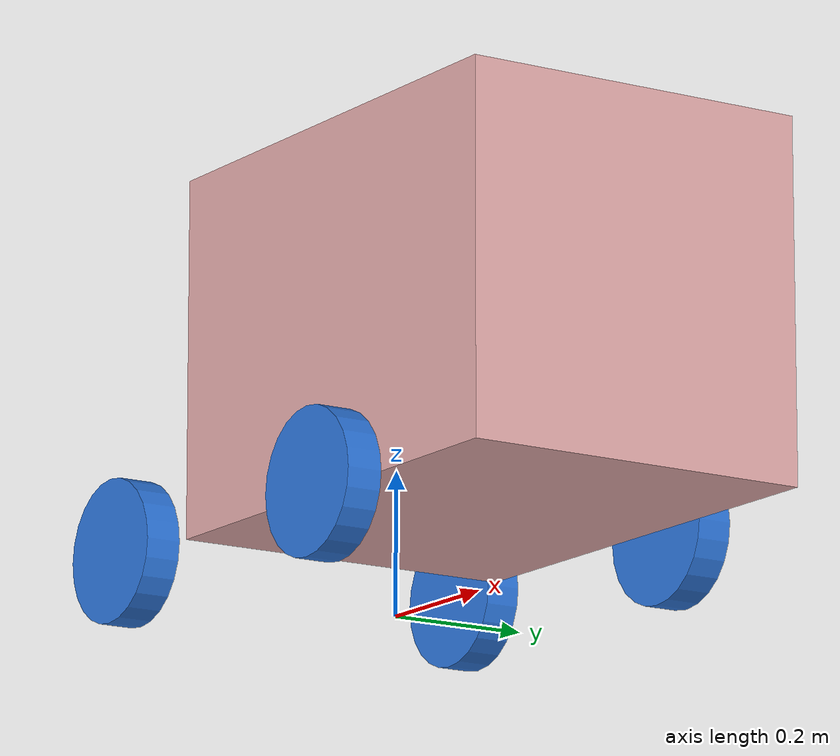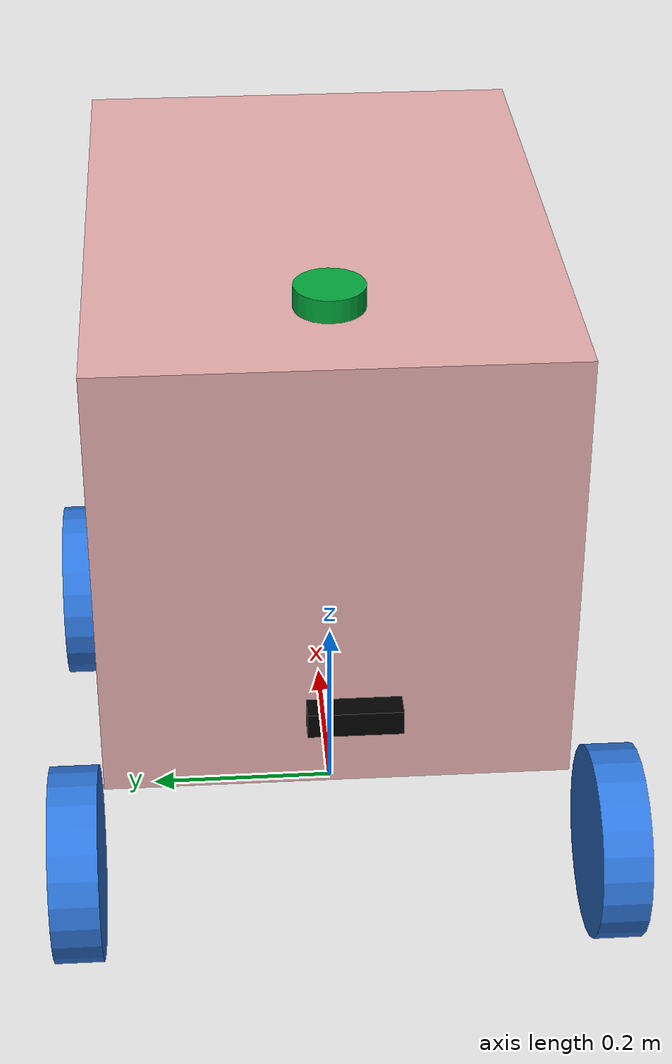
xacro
<?xml version="1.0"?>
<robot name="linorobot2_hamo_bot" xmlns:xacro="http://ros.org/wiki/xacro">

  <!-- ================= ARGS ================= -->
  <xacro:arg name="sim" default="false" />

  <!-- ================= INCLUDE PROPERTIES ================= -->
  <xacro:include filename="$(find linorobot2_description)/urdf/hamo_bot_properties.urdf.xacro" />

  <!-- ================= INCLUDE MECHANICS ================= -->
  <xacro:include filename="$(find linorobot2_description)/urdf/mech/base.urdf.xacro" />
  <xacro:include filename="$(find linorobot2_description)/urdf/mech/wheel.urdf.xacro" />
  <xacro:include filename="$(find linorobot2_description)/urdf/mech/caster_wheel.urdf.xacro" />

  <!-- ================= INCLUDE SENSORS ================= -->
  <xacro:include filename="$(find linorobot2_description)/urdf/sensors/plugins.urdf.xacro" />
  <xacro:include filename="$(find linorobot2_description)/urdf/sensors/imu.urdf.xacro" />
  <xacro:include filename="$(find linorobot2_description)/urdf/sensors/gps.urdf.xacro" />
  <xacro:include filename="$(find linorobot2_description)/urdf/sensors/generic_laser.urdf.xacro" />
  <xacro:include filename="$(find linorobot2_description)/urdf/sensors/depth_sensor.urdf.xacro" />

  <!-- ================= CONTROLLERS ================= -->
  <xacro:include filename="$(find linorobot2_description)/urdf/controllers/diff_drive.urdf.xacro" />

  <!-- ================= BASE ================= -->
  <xacro:base
    length="${base_length}"
    width="${base_width}"
    height="${base_height}"
    mass="${base_mass}"
    wheel_radius="${wheel_radius}"
    wheel_pos_z="${wheel_pos_z}"
    mesh_file="${base_mesh_file}"
  />

  <!-- ================= DRIVE WHEELS ================= -->
  <!-- LEFT -->
  <xacro:wheel
    side="left"
    radius="${wheel_radius}"
    width="${wheel_width}"
    pos_x="${wheel_pos_x}"
    pos_y="${wheel_pos_y}"
    pos_z="${wheel_pos_z}"
    mass="${wheel_mass}"
    mesh_file="${wheel_mesh_file}"
  />

  <!-- RIGHT -->
  <xacro:wheel
    side="right"
    radius="${wheel_radius}"
    width="${wheel_width}"
    pos_x="${wheel_pos_x}"
    pos_y="${-wheel_pos_y}"
    pos_z="${wheel_pos_z}"
    mass="${wheel_mass}"
    mesh_file="${wheel_mesh_file}"
  />
<!-- ================= FRONT PASSIVE WHEELS ================= -->
  <link name="front_left_wheel_link">
    <visual>
      <origin xyz="0 0 0" rpy="${pi/2} 0 0"/>
      <geometry>
        <cylinder radius="${wheel_radius}" length="${wheel_width}"/>
      </geometry>
      <material name="blue">
        <color rgba="0.1764 0.4588 0.8509 1.0"/>
      </material>
    </visual>
    <collision>
      <origin xyz="0 0 0" rpy="${pi/2} 0 0"/>
      <geometry>
        <cylinder radius="${wheel_radius}" length="${wheel_width}"/>
      </geometry>
    </collision>
    <inertial>
      <mass value="${wheel_mass}"/>
      <inertia ixx="${(2/5)*wheel_mass*(wheel_radius*wheel_radius)}" ixy="0" ixz="0"
               iyy="${(2/5)*wheel_mass*(wheel_radius*wheel_radius)}" iyz="0"
               izz="${(2/5)*wheel_mass*(wheel_radius*wheel_radius)}"/>
    </inertial>
  </link>
  <joint name="front_left_wheel_joint" type="continuous">
    <axis xyz="0 1 0"/>
    <parent link="base_link"/>
    <child link="front_left_wheel_link"/>
    <origin xyz="0.25 ${wheel_pos_y} ${wheel_pos_z}" rpy="0 0 0"/>
  </joint>

  <link name="front_right_wheel_link">
    <visual>
      <origin xyz="0 0 0" rpy="${pi/2} 0 0"/>
      <geometry>
        <cylinder radius="${wheel_radius}" length="${wheel_width}"/>
      </geometry>
      <material name="blue">
        <color rgba="0.1764 0.4588 0.8509 1.0"/>
      </material>
    </visual>
    <collision>
      <origin xyz="0 0 0" rpy="${pi/2} 0 0"/>
      <geometry>
        <cylinder radius="${wheel_radius}" length="${wheel_width}"/>
      </geometry>
    </collision>
    <inertial>
      <mass value="${wheel_mass}"/>
      <inertia ixx="${(2/5)*wheel_mass*(wheel_radius*wheel_radius)}" ixy="0" ixz="0"
               iyy="${(2/5)*wheel_mass*(wheel_radius*wheel_radius)}" iyz="0"
               izz="${(2/5)*wheel_mass*(wheel_radius*wheel_radius)}"/>
    </inertial>
  </link>
  <joint name="front_right_wheel_joint" type="continuous">
    <axis xyz="0 1 0"/>
    <parent link="base_link"/>
    <child link="front_right_wheel_link"/>
    <origin xyz="0.25 ${-wheel_pos_y} ${wheel_pos_z}" rpy="0 0 0"/>
  </joint>

  <!-- ================= OPTIONAL CASTERS (DISABLED) ================= -->
  <xacro:if value="${front_caster_wheel}">
    <xacro:caster_wheel
      side="front"
      mass="0.01"
      base_length="${base_length}"
      wheel_radius="${wheel_radius}"
      wheel_pos_z="${wheel_pos_z}"
    />
  </xacro:if>

  <xacro:if value="${rear_caster_wheel}">
    <xacro:caster_wheel
      side="rear"
      mass="0.01"
      base_length="${base_length}"
      wheel_radius="${wheel_radius}"
      wheel_pos_z="${wheel_pos_z}"
    />
  </xacro:if>

  <!-- ================= SENSORS ================= -->
  <xacro:imu/>
  <xacro:gps/>

  <xacro:generic_laser>
    <xacro:insert_block name="laser_pose" />
  </xacro:generic_laser>

  <xacro:depth_sensor>
    <xacro:insert_block name="depth_sensor_pose" />
  </xacro:depth_sensor>

  <!-- ================= REAR RGB CAMERA ================= -->
  <link name="rear_camera_link">
    <visual>
      <geometry><box size="0.025 0.09 0.025"/></geometry>
      <material name="black"><color rgba="0 0 0 1"/></material>
    </visual>
    <inertial>
      <mass value="0.05"/>
      <inertia ixx="1e-5" ixy="0" ixz="0" iyy="1e-5" iyz="0" izz="1e-5"/>
    </inertial>
  </link>
  <joint name="rear_camera_joint" type="fixed">
    <parent link="base_link"/>
    <child link="rear_camera_link"/>
    <!-- back face centre, mid height of base_link (origin at centre) -->
    <origin xyz="${-base_length/2} 0 0" rpy="0 0 ${pi}"/>
  </joint>

  <link name="rear_camera_optical_frame"/>
  <joint name="rear_camera_optical_joint" type="fixed">
    <parent link="rear_camera_link"/>
    <child link="rear_camera_optical_frame"/>
    <origin xyz="0 0 0" rpy="${-pi/2} 0 ${-pi/2}"/>
  </joint>

  <gazebo reference="rear_camera_link">
    <sensor name="rear_camera" type="camera">
      <always_on>true</always_on>
      <update_rate>30</update_rate>
      <topic>rear_camera/image_raw</topic>
      <gz_frame_id>rear_camera_optical_frame</gz_frame_id>
      <camera>
        <horizontal_fov>1.047</horizontal_fov>
        <image>
          <width>640</width>
          <height>480</height>
          <format>RGB_INT8</format>
        </image>
        <clip>
          <near>0.1</near>
          <far>50.0</far>
        </clip>
        <noise>
          <type>gaussian</type>
          <mean>0</mean>
          <stddev>0.007</stddev>
        </noise>
      </camera>
    </sensor>
  </gazebo>

  <!-- ================= CONTROLLER ================= -->
  <xacro:diff_drive_controller
    wheel_separation="${wheel_pos_y * 2}"
    wheel_radius="${wheel_radius}"
  />

</robot>

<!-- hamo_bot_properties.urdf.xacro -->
<robot xmlns:xacro="http://ros.org/wiki/xacro">
  <!-- ================= BASE ================= -->
  <xacro:property name="base_length" value="0.7" />
  <xacro:property name="base_width"  value="0.5" />
  <xacro:property name="base_height" value="0.5" />
  <xacro:property name="base_mass"   value="20.0" />
  <xacro:property name="base_mesh_file" value="" />

  <!-- ================= WHEELS ================= -->
  <xacro:property name="wheel_radius" value="0.1" />
  <xacro:property name="wheel_width"  value="0.05" />
  <xacro:property name="wheel_mass"   value="0.5" />
  <xacro:property name="wheel_torque" value="20" />

  <!-- driven wheels at rear corners -->
  <xacro:property name="wheel_pos_x" value="-0.25" />
  <xacro:property name="wheel_pos_y" value="0.275" />
  <!-- z from base_link centre so wheel bottom touches ground:           -->
  <!-- base_link centre is at wheel_radius(0.1) above ground            -->
  <!-- wheel centre must be at wheel_radius(0.1) above ground           -->
  <!-- so wheel joint z relative to base_link = 0 (same height)        -->
  <!-- but base_link centre is at base_height/2 above its bottom        -->
  <!-- base bottom from ground = wheel_radius = 0.1                     -->
  <!-- base_link centre from ground = 0.1 + 0.25 = 0.35... wait        -->
  <!-- joint: base_footprint->base_link z = wheel_radius - wheel_pos_z  -->
  <!-- we need base bottom at wheel_radius above ground                 -->
  <!-- base_link centre from ground = wheel_radius + base_height/2      -->
  <!-- wheel centre from ground = wheel_radius = 0.1                    -->
  <!-- wheel_pos_z (joint z from base_link) = 0.1 - 0.35 = -0.25       -->
  <!-- base_footprint->base_link: z = wheel_radius - wheel_pos_z        -->
  <xacro:property name="wheel_pos_z" value="-0.25" />

  <xacro:property name="front_caster_wheel" value="false" />
  <xacro:property name="rear_caster_wheel"  value="false" />
  <xacro:property name="wheel_mesh_file"    value="" />

  <!-- ================= SENSORS ================= -->
  <!-- base_link centre from ground = 0.35                              -->
  <!-- base top from base_link centre = +0.25                           -->
  <!-- laser z from base_link = 0.25 + 0.025 = 0.275                   -->
  <xacro:property name="laser_pose">
    <origin xyz="0 0 0.275" rpy="0 0 0"/>
  </xacro:property>
  <xacro:property name="depth_sensor_pose">
    <origin xyz="0.35 0 0.0" rpy="0 0 0"/>
  </xacro:property>
</robot>

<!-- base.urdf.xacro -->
<robot xmlns:xacro="http://ros.org/wiki/xacro">
  <xacro:macro name="base" params="length width height mass wheel_radius wheel_pos_z mesh_file">
    <link name="base_footprint"/>

    <link name="base_link">
      <visual>
        <origin xyz="${(length/2) - 0.1327} 0 0" rpy="0 0 0"/>
        <geometry>
          <xacro:if value="${mesh_file == ''}">
            <box size="${length} ${width} ${height}"/>
          </xacro:if>
          <xacro:unless value="${mesh_file == ''}">
            <mesh filename="${mesh_file}" scale="1 1 1"/>
          </xacro:unless>
        </geometry>
        <material name="yellow">
          <color rgba="0.8784 0.6627 0.6627 1.0"/>
        </material>
      </visual>

      <collision>
        <origin xyz="${(length/2) - 0.0127} 0 0" rpy="0 0 0"/>
        <geometry>
          <box size="${length} ${width} ${height}"/>
        </geometry>
      </collision>

      <inertial>
        <origin xyz="0 0 0" rpy="0 0 0"/>
        <mass value="${mass}"/>
        <inertia ixx="${(1/12) * mass * ((width  * width)  + (height * height))}" ixy="0.0" ixz="0.0"
                 iyy="${(1/12) * mass * ((length * length) + (height * height))}" iyz="0.0"
                 izz="${(1/12) * mass * ((length * length) + (width  * width))}"/>
      </inertial>
    </link>

    <gazebo reference="base_link">
      <visual>
        <material>
          <ambient>0.8392 0.6314 0.0 1.0</ambient>
          <diffuse>0.8392 0.6314 0.0 1.0</diffuse>
          <specular>0.99 0.99 0.99 1.0</specular>
          <emissive>0.0 0.0 0.0 0.0</emissive>
        </material>
      </visual>
    </gazebo>

    <joint name="base_to_footprint" type="fixed">
      <parent link="base_footprint"/>
      <child link="base_link"/>
      <origin xyz="0 0 ${wheel_radius - wheel_pos_z}" rpy="0 0 0"/>
    </joint>
  </xacro:macro>
</robot>

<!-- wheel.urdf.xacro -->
<robot xmlns:xacro="http://ros.org/wiki/xacro">
  <xacro:macro name="wheel" params="side radius width pos_x pos_y pos_z mass mesh_file">
    <link name="${side}_wheel_link">
      <visual>
        <origin xyz="0 0 0" rpy="${pi/2} 0 0"/>
        <geometry>
          <xacro:if value="${mesh_file == ''}">
            <cylinder radius="${radius}" length="${width}"/>
          </xacro:if>
          <xacro:unless value="${mesh_file == ''}">
            <mesh filename="${mesh_file}" scale="1 1 1"/>
          </xacro:unless>
        </geometry>
        <material name="blue">
            <color rgba="0.1764 0.4588 0.8509 1.0"/>
        </material>
      </visual>
      <collision>
        <origin xyz="0 0 0" rpy="${pi/2} 0 0"/>
        <geometry>
          <cylinder radius="${radius}" length="${width}"/>
        </geometry>
      </collision>

      <inertial>
        <origin xyz="0 0 0" rpy="0 0 0"/>
        <mass value="${mass}"/>
        <inertia ixx="${(2/5) * mass * (radius * radius)}" ixy="0" ixz="0"
                 iyy="${(2/5) * mass * (radius * radius)}" iyz="0"
                 izz="${(2/5) * mass * (radius * radius)}" />
      </inertial>
    </link>
    <gazebo reference="${side}_wheel_link">
      <visual>
        <material>
          <ambient>0.1764 0.4588 0.8509 1.0</ambient>
          <diffuse>0.1764 0.4588 0.8509 1.0</diffuse>
          <specular>0.1764 0.4588 0.8509 1.0</specular>
          <emissive>0.0 0.0 0.0 0.0</emissive>
        </material>
      </visual>
    </gazebo>
    <joint name="${side}_wheel_joint" type="continuous">
      <axis xyz="0 1 0" />
      <parent link="base_link"/>
      <child link="${side}_wheel_link"/>
      <origin xyz="${pos_x} ${pos_y} ${pos_z}" rpy="0 0 0"/>
    </joint>
  </xacro:macro>
</robot>

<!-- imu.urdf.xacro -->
<robot xmlns:xacro="http://ros.org/wiki/xacro">
  <xacro:macro name="imu">
    <link name="imu_link"/>

    <joint name="imu_to_base_link" type="fixed">
      <parent link="base_link"/>
      <child link="imu_link"/>
      <origin xyz="0 0 0" rpy="0 0 0"/>
    </joint>

    <gazebo>
      <plugin filename="gz-sim-imu-system" name="gz::sim::systems::Imu">
      </plugin>
    </gazebo>

    <gazebo reference="imu_link">
      <sensor name="imu_sensor" type="imu">
        <topic>$(arg namespace)/imu/data</topic>
        <update_rate>50</update_rate>
        <always_on>true</always_on>
        <visualize>true</visualize>
      </sensor>
    </gazebo>
  </xacro:macro>
</robot>

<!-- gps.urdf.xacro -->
<robot xmlns:xacro="http://ros.org/wiki/xacro">
  <xacro:macro name="gps">
    <link name="gps_link"/>

    <joint name="gps_to_base_link" type="fixed">
      <parent link="base_link"/>
      <child link="gps_link"/>
      <origin xyz="0 0 0.1" rpy="0 0 0"/>
    </joint>

<gazebo>
  <plugin filename="libgz-sim8-navsat-system.so" name="gz::sim::systems::NavSat">
  </plugin>
</gazebo>
    <gazebo reference="gps_link">
      <sensor name="gps_sensor" type="navsat">
        <topic>gps/fix</topic>
        <update_rate>10</update_rate>
        <always_on>true</always_on>
        <visualize>true</visualize>
      </sensor>
    </gazebo>
  </xacro:macro>
</robot>

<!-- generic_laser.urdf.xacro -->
<robot xmlns:xacro="http://ros.org/wiki/xacro">
  <xacro:include filename="$(find linorobot2_description)/urdf/sensors/laser.urdf.xacro" />

  <xacro:macro name="generic_laser" params="*origin">
    <xacro:laser
      update_rate="10"
      ray_count="360"
      min_angle="-3.1416"
      max_angle="3.1416"
      min_range="0.08"
      max_range="12.0"
      frame_id="laser"
      topic_name="/scan"
    >
      <xacro:insert_block name="origin" />
    </xacro:laser>
  </xacro:macro>

  <xacro:macro name="generic_base_laser" params="*origin">
    <xacro:laser
      update_rate="10"
      ray_count="360"
      min_angle="-3.1416"
      max_angle="3.1416"
      min_range="0.21"
      max_range="5.5"
      frame_id="base_laser"
      topic_name="base/scan"
    >
      <xacro:insert_block name="origin" />
    </xacro:laser>
  </xacro:macro>
</robot>

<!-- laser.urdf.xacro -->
<robot xmlns:xacro="http://ros.org/wiki/xacro">
  <xacro:property name="M_PI" value="3.1415926535897931" />
  <xacro:macro name="laser" params="*origin update_rate ray_count min_angle max_angle min_range max_range frame_id topic_name">
    <link name="${frame_id}">
      <visual>
        <origin xyz="0 0 -0.025" rpy="0 0 0"/>
        <geometry>
          <cylinder radius="0.0375" length="0.05"/>
        </geometry>
        <material name="green">
            <color rgba="0.003 0.639 0.223 1.0"/>
        </material>
      </visual>
      <collision>
        <origin xyz="0 0 -0.025" rpy="0 0 0"/>
        <geometry>
          <cylinder radius="0.0375" length="0.05"/>
        </geometry>
      </collision>

      <inertial>
        <origin xyz="0 0 0" rpy="0 0 0"/>
        <mass value="0.1"/>
        <inertia ixx="${(2/5) * 0.1 * (0.0375 * 0.0375)}" ixy="0" ixz="0"
                 iyy="${(2/5) * 0.1 * (0.0375 * 0.0375)}" iyz="0"
                 izz="${(2/5) * 0.1 * (0.0375 * 0.0375)}" />
      </inertial>
    </link>

    <gazebo reference="${frame_id}">
      <visual>
        <material>
          <ambient>0.003 0.639 0.223 1.0</ambient>
          <diffuse>0.003 0.639 0.223 1.0</diffuse>
          <specular>0.003 0.639 0.223 1.0</specular>
          <emissive>0.0 0.0 0.0 0.0</emissive>
        </material>
      </visual>
    </gazebo>

    <joint name="${frame_id}_to_base_link" type="fixed">
      <parent link="base_link"/>
      <child link="${frame_id}"/>
      <xacro:insert_block name="origin" />
    </joint>

    <gazebo reference="${frame_id}">
      <sensor name="gpu_lidar" type="gpu_lidar">
        <topic>$(arg namespace)${topic_name}</topic>
        <gz_frame_id>${frame_id}</gz_frame_id>
        <update_rate>${update_rate}</update_rate>
        <always_on>true</always_on>
        <visualize>true</visualize>
        <lidar>
          <scan>
            <horizontal>
              <samples>${ray_count}</samples>
              <resolution>1</resolution>
              <min_angle>${min_angle}</min_angle>
              <max_angle>${max_angle}</max_angle>
            </horizontal>
            <vertical>
              <samples>1</samples>
              <resolution>1</resolution>
              <min_angle>0.0</min_angle>
              <max_angle>0.0</max_angle>
            </vertical>
          </scan>
          <range>
            <min>${min_range}</min>
            <max>${max_range}</max>
            <resolution>0.01</resolution>
          </range>
        </lidar>
      </sensor>
    </gazebo>
  </xacro:macro>
</robot>

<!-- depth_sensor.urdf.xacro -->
<robot xmlns:xacro="http://ros.org/wiki/xacro">
  <xacro:property name="M_PI" value="3.1415926535897931" />
  <xacro:macro name="depth_sensor" params="*origin">
    <link name="camera_link">
      <visual>
        <origin xyz="0 0 0" rpy="0 0 0"/>
        <geometry>
          <box size="0.030 0.124 0.030"/>
        </geometry>
        <material name="red">
          <color rgba="0.416 0.051 0.047 1.0"/>
        </material>
      </visual>

      <collision>
        <origin xyz="0 0 0" rpy="0 0 0"/>
        <geometry>
          <box size="0.030 0.124 0.030"/>
        </geometry>
      </collision>

      <inertial>
        <origin xyz="0 0 0" rpy="0 0 0"/>
        <mass value="0.135"/>
        <inertia ixx="${(1/12) * 0.135 * ((0.124  * 0.124)  + (0.030 * 0.030))}" ixy="0.0" ixz="0.0"
                 iyy="${(1/12) * 0.135 * ((0.030 * 0.030) + (0.030 * 0.030))}" iyz="0.0"
                 izz="${(1/12) * 0.135 * ((0.030 * 0.030) + (0.124  * 0.124))}"/>
      </inertial>
    </link>

    <gazebo reference="camera_link">
      <visual>
        <material>
          <ambient>0.416 0.051 0.047 1.0</ambient>
          <diffuse>0.416 0.051 0.047 1.0</diffuse>
          <specular>0.416 0.051 0.047 1.0</specular>
          <emissive>0.416 0.051 0.047 1.0</emissive>
        </material>
      </visual>
    </gazebo>rgb(213,28,40)

    <joint name="camera_to_base_link" type="fixed">
      <parent link="base_link"/>
      <child link="camera_link"/>
      <xacro:insert_block name="origin" />
    </joint>

    <link name="camera_depth_link"/>
    <joint name="camera_depth_joint" type="fixed">
      <origin xyz="0 0 0" rpy="0 0 0"/>
      <parent link="camera_link"/>
      <child link="camera_depth_link"/>
    </joint>

    <gazebo reference="camera_link">
      <sensor name="camera" type="rgbd_camera">
        <topic>$(arg namespace)/camera</topic>
        <update_rate>30.0</update_rate>
        <always_on>true</always_on>
        <visualize>true</visualize>
        <camera>
          <optical_frame_id>camera_depth_link</optical_frame_id>
          <horizontal_fov>1.50098</horizontal_fov>
          <image>
            <width>640</width>
            <height>480</height>
            <format>R8G8B8</format>
          </image>
          <clip>
            <near>0.3</near>
            <far>100</far>
          </clip>
        </camera>
      </sensor>
    </gazebo>
  </xacro:macro>
</robot>
